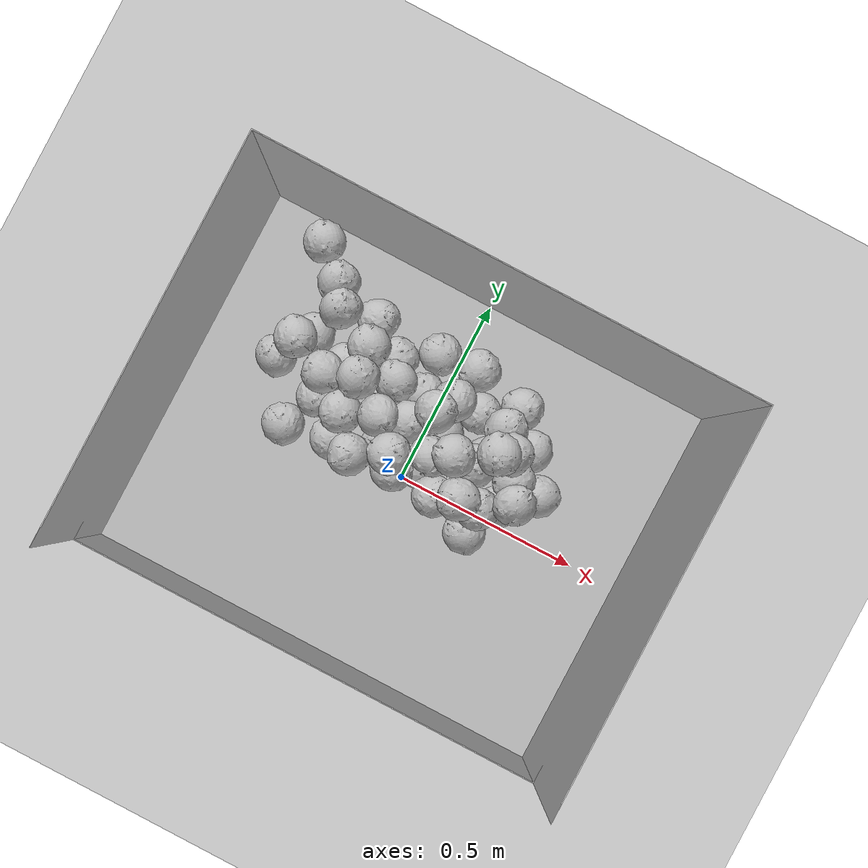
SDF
<sdf version="1.6">
 <world name="default">
  <model name="ground_plane">
   <static>1</static>
   <link name="link">
    <collision name="collision">
     <geometry><plane><normal>0 0 1</normal><size>100 100</size></plane></geometry>
     <surface><friction><ode><mu>100</mu><mu2>50</mu2></ode></friction></surface>
    </collision>
    <visual name="visual">
     <cast_shadows>0</cast_shadows>
     <geometry><plane><normal>0 0 1</normal><size>100 100</size></plane></geometry>
     <material>
      <script><uri>file://media/materials/scripts/gazebo.material</uri><name>Gazebo/Grey</name></script>
     </material>
    </visual>
   </link>
  </model>
  <model name="container">
   <link name="link">
    <inertial>
     <mass>1</mass>
     <inertia><ixx>1</ixx><ixy>0</ixy><ixz>0</ixz><iyy>1</iyy><iyz>0</iyz><izz>1</izz></inertia>
    </inertial>
    <collision name="collision">
     <geometry>
      <mesh>
       <scale>0.001 0.001 0.001</scale>
       <uri>model://big_container_open/big_container_open_meshlab.dae</uri>
      </mesh>
     </geometry>
     <surface>
      <friction><ode><mu>0.6</mu><mu2>0.6</mu2></ode></friction>
      <contact><ode><max_vel>0.1</max_vel><min_depth>0.0001</min_depth></ode></contact>
     </surface>
    </collision>
    <visual name="visual">
     <geometry>
      <mesh>
       <scale>0.001 0.001 0.001</scale>
       <uri>model://big_container_open/big_container_open_meshlab.dae</uri>
      </mesh>
     </geometry>
    </visual>
   </link>
   <pose>4.3e-05 0.001089 -9.3e-05 -2.3e-05 1e-06 -0.000355</pose>
  </model>
  <model name="cabbage_1">
   <link name="link">
    <inertial>
     <mass>1</mass>
     <inertia><ixx>0.001</ixx><ixy>0</ixy><ixz>0</ixz><iyy>0.001</iyy><iyz>0</iyz><izz>0.001</izz></inertia>
    </inertial>
    <collision name="collision">
     <geometry>
      <mesh><scale>0.001 0.001 0.001</scale><uri>model://cabbage/cabbage_single.dae</uri></mesh>
     </geometry>
     <surface>
      <friction><ode><mu>0.8</mu><mu2>0.8</mu2></ode></friction>
      <contact><ode><max_vel>0.1</max_vel><min_depth>0.0001</min_depth></ode></contact>
     </surface>
    </collision>
    <visual name="visual">
     <geometry>
      <mesh><scale>0.001 0.001 0.001</scale><uri>model://cabbage/cabbage_single.dae</uri></mesh>
     </geometry>
     <material><script><uri>model://cabbage/texture.material</uri><name>CabbageTexture</name></script></material>
    </visual>
   </link>
   <pose>0.338045 0.119369 0.00437 1.61918 0.002361 2.62194</pose>
  </model>
  <model name="cabbage_2">
   <link name="link">
    <inertial>
     <mass>1</mass>
     <inertia><ixx>0.001</ixx><ixy>0</ixy><ixz>0</ixz><iyy>0.001</iyy><iyz>0</iyz><izz>0.001</izz></inertia>
    </inertial>
    <collision name="collision">
     <geometry>
      <mesh><scale>0.001 0.001 0.001</scale><uri>model://cabbage/cabbage_single.dae</uri></mesh>
     </geometry>
     <surface>
      <friction><ode><mu>0.8</mu><mu2>0.8</mu2></ode></friction>
      <contact><ode><max_vel>0.1</max_vel><min_depth>0.0001</min_depth></ode></contact>
     </surface>
    </collision>
    <visual name="visual">
     <geometry>
      <mesh><scale>0.001 0.001 0.001</scale><uri>model://cabbage/cabbage_single.dae</uri></mesh>
     </geometry>
     <material><script><uri>model://cabbage/texture.material</uri><name>CabbageTexture</name></script></material>
    </visual>
   </link>
   <pose>-0.160712 0.134637 0.003951 1.57509 0.007918 -1.36634</pose>
  </model>
  <model name="cabbage_6">
   <link name="link">
    <inertial>
     <mass>1</mass>
     <inertia><ixx>0.001</ixx><ixy>0</ixy><ixz>0</ixz><iyy>0.001</iyy><iyz>0</iyz><izz>0.001</izz></inertia>
    </inertial>
    <collision name="collision">
     <geometry>
      <mesh><scale>0.001 0.001 0.001</scale><uri>model://cabbage/cabbage_single.dae</uri></mesh>
     </geometry>
     <surface>
      <friction><ode><mu>0.8</mu><mu2>0.8</mu2></ode></friction>
      <contact><ode><max_vel>0.1</max_vel><min_depth>0.0001</min_depth></ode></contact>
     </surface>
    </collision>
    <visual name="visual">
     <geometry>
      <mesh><scale>0.001 0.001 0.001</scale><uri>model://cabbage/cabbage_single.dae</uri></mesh>
     </geometry>
     <material><script><uri>model://cabbage/texture.material</uri><name>CabbageTexture</name></script></material>
    </visual>
   </link>
   <pose>0.25772 0.047502 0.004075 1.5633 -0.007798 -2.75672</pose>
  </model>
  <model name="cabbage_7">
   <link name="link">
    <inertial>
     <mass>1</mass>
     <inertia><ixx>0.001</ixx><ixy>0</ixy><ixz>0</ixz><iyy>0.001</iyy><iyz>0</iyz><izz>0.001</izz></inertia>
    </inertial>
    <collision name="collision">
     <geometry>
      <mesh><scale>0.001 0.001 0.001</scale><uri>model://cabbage/cabbage_single.dae</uri></mesh>
     </geometry>
     <surface>
      <friction><ode><mu>0.8</mu><mu2>0.8</mu2></ode></friction>
      <contact><ode><max_vel>0.1</max_vel><min_depth>0.0001</min_depth></ode></contact>
     </surface>
    </collision>
    <visual name="visual">
     <geometry>
      <mesh><scale>0.001 0.001 0.001</scale><uri>model://cabbage/cabbage_single.dae</uri></mesh>
     </geometry>
     <material><script><uri>model://cabbage/texture.material</uri><name>CabbageTexture</name></script></material>
    </visual>
   </link>
   <pose>-0.282449 0.083841 0.005995 1.70223 0.073396 -1.94267</pose>
  </model>
  <model name="cabbage_10">
   <link name="link">
    <inertial>
     <mass>1</mass>
     <inertia><ixx>0.001</ixx><ixy>0</ixy><ixz>0</ixz><iyy>0.001</iyy><iyz>0</iyz><izz>0.001</izz></inertia>
    </inertial>
    <collision name="collision">
     <geometry>
      <mesh><scale>0.001 0.001 0.001</scale><uri>model://cabbage/cabbage_single.dae</uri></mesh>
     </geometry>
     <surface>
      <friction><ode><mu>0.8</mu><mu2>0.8</mu2></ode></friction>
      <contact><ode><max_vel>0.1</max_vel><min_depth>0.0001</min_depth></ode></contact>
     </surface>
    </collision>
    <visual name="visual">
     <geometry>
      <mesh><scale>0.001 0.001 0.001</scale><uri>model://cabbage/cabbage_single.dae</uri></mesh>
     </geometry>
     <material><script><uri>model://cabbage/texture.material</uri><name>CabbageTexture</name></script></material>
    </visual>
   </link>
   <pose>0.028906 0.041666 0.004637 1.50783 -0.077096 -1.75712</pose>
  </model>
  <model name="cabbage_11">
   <link name="link">
    <inertial>
     <mass>1</mass>
     <inertia><ixx>0.001</ixx><ixy>0</ixy><ixz>0</ixz><iyy>0.001</iyy><iyz>0</iyz><izz>0.001</izz></inertia>
    </inertial>
    <collision name="collision">
     <geometry>
      <mesh><scale>0.001 0.001 0.001</scale><uri>model://cabbage/cabbage_single.dae</uri></mesh>
     </geometry>
     <surface>
      <friction><ode><mu>0.8</mu><mu2>0.8</mu2></ode></friction>
      <contact><ode><max_vel>0.1</max_vel><min_depth>0.0001</min_depth></ode></contact>
     </surface>
    </collision>
    <visual name="visual">
     <geometry>
      <mesh><scale>0.001 0.001 0.001</scale><uri>model://cabbage/cabbage_single.dae</uri></mesh>
     </geometry>
     <material><script><uri>model://cabbage/texture.material</uri><name>CabbageTexture</name></script></material>
    </visual>
   </link>
   <pose>0.178783 0.14303 0.005735 1.46961 -0.171728 -0.377109</pose>
  </model>
  <model name="cabbage_12">
   <link name="link">
    <inertial>
     <mass>1</mass>
     <inertia><ixx>0.001</ixx><ixy>0</ixy><ixz>0</ixz><iyy>0.001</iyy><iyz>0</iyz><izz>0.001</izz></inertia>
    </inertial>
    <collision name="collision">
     <geometry>
      <mesh><scale>0.001 0.001 0.001</scale><uri>model://cabbage/cabbage_single.dae</uri></mesh>
     </geometry>
     <surface>
      <friction><ode><mu>0.8</mu><mu2>0.8</mu2></ode></friction>
      <contact><ode><max_vel>0.1</max_vel><min_depth>0.0001</min_depth></ode></contact>
     </surface>
    </collision>
    <visual name="visual">
     <geometry>
      <mesh><scale>0.001 0.001 0.001</scale><uri>model://cabbage/cabbage_single.dae</uri></mesh>
     </geometry>
     <material><script><uri>model://cabbage/texture.material</uri><name>CabbageTexture</name></script></material>
    </visual>
   </link>
   <pose>-0.238193 0.32125 0.009271 1.46239 -0.340213 -1.06037</pose>
  </model>
  <model name="cabbage_16">
   <link name="link">
    <inertial>
     <mass>1</mass>
     <inertia><ixx>0.001</ixx><ixy>0</ixy><ixz>0</ixz><iyy>0.001</iyy><iyz>0</iyz><izz>0.001</izz></inertia>
    </inertial>
    <collision name="collision">
     <geometry>
      <mesh><scale>0.001 0.001 0.001</scale><uri>model://cabbage/cabbage_single.dae</uri></mesh>
     </geometry>
     <surface>
      <friction><ode><mu>0.8</mu><mu2>0.8</mu2></ode></friction>
      <contact><ode><max_vel>0.1</max_vel><min_depth>0.0001</min_depth></ode></contact>
     </surface>
    </collision>
    <visual name="visual">
     <geometry>
      <mesh><scale>0.001 0.001 0.001</scale><uri>model://cabbage/cabbage_single.dae</uri></mesh>
     </geometry>
     <material><script><uri>model://cabbage/texture.material</uri><name>CabbageTexture</name></script></material>
    </visual>
   </link>
   <pose>0.198885 0.300354 0.004776 1.49423 -0.095171 -0.896057</pose>
  </model>
  <model name="cabbage_17">
   <link name="link">
    <inertial>
     <mass>1</mass>
     <inertia><ixx>0.001</ixx><ixy>0</ixy><ixz>0</ixz><iyy>0.001</iyy><iyz>0</iyz><izz>0.001</izz></inertia>
    </inertial>
    <collision name="collision">
     <geometry>
      <mesh><scale>0.001 0.001 0.001</scale><uri>model://cabbage/cabbage_single.dae</uri></mesh>
     </geometry>
     <surface>
      <friction><ode><mu>0.8</mu><mu2>0.8</mu2></ode></friction>
      <contact><ode><max_vel>0.1</max_vel><min_depth>0.0001</min_depth></ode></contact>
     </surface>
    </collision>
    <visual name="visual">
     <geometry>
      <mesh><scale>0.001 0.001 0.001</scale><uri>model://cabbage/cabbage_single.dae</uri></mesh>
     </geometry>
     <material><script><uri>model://cabbage/texture.material</uri><name>CabbageTexture</name></script></material>
    </visual>
   </link>
   <pose>-0.206363 0.004883 0.003937 1.57562 0.00821 -1.09915</pose>
  </model>
  <model name="cabbage_20">
   <link name="link">
    <inertial>
     <mass>1</mass>
     <inertia><ixx>0.001</ixx><ixy>0</ixy><ixz>0</ixz><iyy>0.001</iyy><iyz>0</iyz><izz>0.001</izz></inertia>
    </inertial>
    <collision name="collision">
     <geometry>
      <mesh><scale>0.001 0.001 0.001</scale><uri>model://cabbage/cabbage_single.dae</uri></mesh>
     </geometry>
     <surface>
      <friction><ode><mu>0.8</mu><mu2>0.8</mu2></ode></friction>
      <contact><ode><max_vel>0.1</max_vel><min_depth>0.0001</min_depth></ode></contact>
     </surface>
    </collision>
    <visual name="visual">
     <geometry>
      <mesh><scale>0.001 0.001 0.001</scale><uri>model://cabbage/cabbage_single.dae</uri></mesh>
     </geometry>
     <material><script><uri>model://cabbage/texture.material</uri><name>CabbageTexture</name></script></material>
    </visual>
   </link>
   <pose>0.141362 0.032322 0.004782 1.49274 -0.096805 -1.60788</pose>
  </model>
  <model name="cabbage_21">
   <link name="link">
    <inertial>
     <mass>1</mass>
     <inertia><ixx>0.001</ixx><ixy>0</ixy><ixz>0</ixz><iyy>0.001</iyy><iyz>0</iyz><izz>0.001</izz></inertia>
    </inertial>
    <collision name="collision">
     <geometry>
      <mesh><scale>0.001 0.001 0.001</scale><uri>model://cabbage/cabbage_single.dae</uri></mesh>
     </geometry>
     <surface>
      <friction><ode><mu>0.8</mu><mu2>0.8</mu2></ode></friction>
      <contact><ode><max_vel>0.1</max_vel><min_depth>0.0001</min_depth></ode></contact>
     </surface>
    </collision>
    <visual name="visual">
     <geometry>
      <mesh><scale>0.001 0.001 0.001</scale><uri>model://cabbage/cabbage_single.dae</uri></mesh>
     </geometry>
     <material><script><uri>model://cabbage/texture.material</uri><name>CabbageTexture</name></script></material>
    </visual>
   </link>
   <pose>0.265352 0.217555 0.004623 1.50916 -0.07587 -2.79041</pose>
  </model>
  <model name="cabbage_22">
   <link name="link">
    <inertial>
     <mass>1</mass>
     <inertia><ixx>0.001</ixx><ixy>0</ixy><ixz>0</ixz><iyy>0.001</iyy><iyz>0</iyz><izz>0.001</izz></inertia>
    </inertial>
    <collision name="collision">
     <geometry>
      <mesh><scale>0.001 0.001 0.001</scale><uri>model://cabbage/cabbage_single.dae</uri></mesh>
     </geometry>
     <surface>
      <friction><ode><mu>0.8</mu><mu2>0.8</mu2></ode></friction>
      <contact><ode><max_vel>0.1</max_vel><min_depth>0.0001</min_depth></ode></contact>
     </surface>
    </collision>
    <visual name="visual">
     <geometry>
      <mesh><scale>0.001 0.001 0.001</scale><uri>model://cabbage/cabbage_single.dae</uri></mesh>
     </geometry>
     <material><script><uri>model://cabbage/texture.material</uri><name>CabbageTexture</name></script></material>
    </visual>
   </link>
   <pose>-0.046239 0.211124 0.006612 1.37012 0.133765 1.20828</pose>
  </model>
  <model name="cabbage_26">
   <link name="link">
    <inertial>
     <mass>1</mass>
     <inertia><ixx>0.001</ixx><ixy>0</ixy><ixz>0</ixz><iyy>0.001</iyy><iyz>0</iyz><izz>0.001</izz></inertia>
    </inertial>
    <collision name="collision">
     <geometry>
      <mesh><scale>0.001 0.001 0.001</scale><uri>model://cabbage/cabbage_single.dae</uri></mesh>
     </geometry>
     <surface>
      <friction><ode><mu>0.8</mu><mu2>0.8</mu2></ode></friction>
      <contact><ode><max_vel>0.1</max_vel><min_depth>0.0001</min_depth></ode></contact>
     </surface>
    </collision>
    <visual name="visual">
     <geometry>
      <mesh><scale>0.001 0.001 0.001</scale><uri>model://cabbage/cabbage_single.dae</uri></mesh>
     </geometry>
     <material><script><uri>model://cabbage/texture.material</uri><name>CabbageTexture</name></script></material>
    </visual>
   </link>
   <pose>0.103957 0.234161 0.005956 1.4439 -0.20006 -1.04395</pose>
  </model>
  <model name="cabbage_27">
   <link name="link">
    <inertial>
     <mass>1</mass>
     <inertia><ixx>0.001</ixx><ixy>0</ixy><ixz>0</ixz><iyy>0.001</iyy><iyz>0</iyz><izz>0.001</izz></inertia>
    </inertial>
    <collision name="collision">
     <geometry>
      <mesh><scale>0.001 0.001 0.001</scale><uri>model://cabbage/cabbage_single.dae</uri></mesh>
     </geometry>
     <surface>
      <friction><ode><mu>0.8</mu><mu2>0.8</mu2></ode></friction>
      <contact><ode><max_vel>0.1</max_vel><min_depth>0.0001</min_depth></ode></contact>
     </surface>
    </collision>
    <visual name="visual">
     <geometry>
      <mesh><scale>0.001 0.001 0.001</scale><uri>model://cabbage/cabbage_single.dae</uri></mesh>
     </geometry>
     <material><script><uri>model://cabbage/texture.material</uri><name>CabbageTexture</name></script></material>
    </visual>
   </link>
   <pose>-0.336447 -0.021497 0.004791 1.50554 0.032377 1.19338</pose>
  </model>
  <model name="cabbage_28">
   <link name="link">
    <inertial>
     <mass>1</mass>
     <inertia><ixx>0.001</ixx><ixy>0</ixy><ixz>0</ixz><iyy>0.001</iyy><iyz>0</iyz><izz>0.001</izz></inertia>
    </inertial>
    <collision name="collision">
     <geometry>
      <mesh><scale>0.001 0.001 0.001</scale><uri>model://cabbage/cabbage_single.dae</uri></mesh>
     </geometry>
     <surface>
      <friction><ode><mu>0.8</mu><mu2>0.8</mu2></ode></friction>
      <contact><ode><max_vel>0.1</max_vel><min_depth>0.0001</min_depth></ode></contact>
     </surface>
    </collision>
    <visual name="visual">
     <geometry>
      <mesh><scale>0.001 0.001 0.001</scale><uri>model://cabbage/cabbage_single.dae</uri></mesh>
     </geometry>
     <material><script><uri>model://cabbage/texture.material</uri><name>CabbageTexture</name></script></material>
    </visual>
   </link>
   <pose>0.213279 -0.04941 0.004406 1.5299 -0.049896 1.51269</pose>
  </model>
  <model name="cabbage_30">
   <link name="link">
    <inertial>
     <mass>1</mass>
     <inertia><ixx>0.001</ixx><ixy>0</ixy><ixz>0</ixz><iyy>0.001</iyy><iyz>0</iyz><izz>0.001</izz></inertia>
    </inertial>
    <collision name="collision">
     <geometry>
      <mesh><scale>0.001 0.001 0.001</scale><uri>model://cabbage/cabbage_single.dae</uri></mesh>
     </geometry>
     <surface>
      <friction><ode><mu>0.8</mu><mu2>0.8</mu2></ode></friction>
      <contact><ode><max_vel>0.1</max_vel><min_depth>0.0001</min_depth></ode></contact>
     </surface>
    </collision>
    <visual name="visual">
     <geometry>
      <mesh><scale>0.001 0.001 0.001</scale><uri>model://cabbage/cabbage_single.dae</uri></mesh>
     </geometry>
     <material><script><uri>model://cabbage/texture.material</uri><name>CabbageTexture</name></script></material>
    </visual>
   </link>
   <pose>0.033468 0.131767 0.014044 2.02488 0.188294 2.44404</pose>
  </model>
  <model name="cabbage_31">
   <link name="link">
    <inertial>
     <mass>1</mass>
     <inertia><ixx>0.001</ixx><ixy>0</ixy><ixz>0</ixz><iyy>0.001</iyy><iyz>0</iyz><izz>0.001</izz></inertia>
    </inertial>
    <collision name="collision">
     <geometry>
      <mesh><scale>0.001 0.001 0.001</scale><uri>model://cabbage/cabbage_single.dae</uri></mesh>
     </geometry>
     <surface>
      <friction><ode><mu>0.8</mu><mu2>0.8</mu2></ode></friction>
      <contact><ode><max_vel>0.1</max_vel><min_depth>0.0001</min_depth></ode></contact>
     </surface>
    </collision>
    <visual name="visual">
     <geometry>
      <mesh><scale>0.001 0.001 0.001</scale><uri>model://cabbage/cabbage_single.dae</uri></mesh>
     </geometry>
     <material><script><uri>model://cabbage/texture.material</uri><name>CabbageTexture</name></script></material>
    </visual>
   </link>
   <pose>0.26403 0.126406 0.067112 1.43911 -0.097355 0.175454</pose>
  </model>
  <model name="cabbage_32">
   <link name="link">
    <inertial>
     <mass>1</mass>
     <inertia><ixx>0.001</ixx><ixy>0</ixy><ixz>0</ixz><iyy>0.001</iyy><iyz>0</iyz><izz>0.001</izz></inertia>
    </inertial>
    <collision name="collision">
     <geometry>
      <mesh><scale>0.001 0.001 0.001</scale><uri>model://cabbage/cabbage_single.dae</uri></mesh>
     </geometry>
     <surface>
      <friction><ode><mu>0.8</mu><mu2>0.8</mu2></ode></friction>
      <contact><ode><max_vel>0.1</max_vel><min_depth>0.0001</min_depth></ode></contact>
     </surface>
    </collision>
    <visual name="visual">
     <geometry>
      <mesh><scale>0.001 0.001 0.001</scale><uri>model://cabbage/cabbage_single.dae</uri></mesh>
     </geometry>
     <material><script><uri>model://cabbage/texture.material</uri><name>CabbageTexture</name></script></material>
    </visual>
   </link>
   <pose>-0.376612 0.220758 0.004318 1.53156 -0.047835 -2.41315</pose>
  </model>
  <model name="cabbage_35">
   <link name="link">
    <inertial>
     <mass>1</mass>
     <inertia><ixx>0.001</ixx><ixy>0</ixy><ixz>0</ixz><iyy>0.001</iyy><iyz>0</iyz><izz>0.001</izz></inertia>
    </inertial>
    <collision name="collision">
     <geometry>
      <mesh><scale>0.001 0.001 0.001</scale><uri>model://cabbage/cabbage_single.dae</uri></mesh>
     </geometry>
     <surface>
      <friction><ode><mu>0.8</mu><mu2>0.8</mu2></ode></friction>
      <contact><ode><max_vel>0.1</max_vel><min_depth>0.0001</min_depth></ode></contact>
     </surface>
    </collision>
    <visual name="visual">
     <geometry>
      <mesh><scale>0.001 0.001 0.001</scale><uri>model://cabbage/cabbage_single.dae</uri></mesh>
     </geometry>
     <material><script><uri>model://cabbage/texture.material</uri><name>CabbageTexture</name></script></material>
    </visual>
   </link>
   <pose>0.11408 -0.007497 0.08358 1.91992 -0.289045 -1.10072</pose>
  </model>
  <model name="cabbage_36">
   <link name="link">
    <inertial>
     <mass>1</mass>
     <inertia><ixx>0.001</ixx><ixy>0</ixy><ixz>0</ixz><iyy>0.001</iyy><iyz>0</iyz><izz>0.001</izz></inertia>
    </inertial>
    <collision name="collision">
     <geometry>
      <mesh><scale>0.001 0.001 0.001</scale><uri>model://cabbage/cabbage_single.dae</uri></mesh>
     </geometry>
     <surface>
      <friction><ode><mu>0.8</mu><mu2>0.8</mu2></ode></friction>
      <contact><ode><max_vel>0.1</max_vel><min_depth>0.0001</min_depth></ode></contact>
     </surface>
    </collision>
    <visual name="visual">
     <geometry>
      <mesh><scale>0.001 0.001 0.001</scale><uri>model://cabbage/cabbage_single.dae</uri></mesh>
     </geometry>
     <material><script><uri>model://cabbage/texture.material</uri><name>CabbageTexture</name></script></material>
    </visual>
   </link>
   <pose>0.178663 0.255461 0.076212 1.98723 0.223029 -0.199707</pose>
  </model>
  <model name="cabbage_37">
   <link name="link">
    <inertial>
     <mass>1</mass>
     <inertia><ixx>0.001</ixx><ixy>0</ixy><ixz>0</ixz><iyy>0.001</iyy><iyz>0</iyz><izz>0.001</izz></inertia>
    </inertial>
    <collision name="collision">
     <geometry>
      <mesh><scale>0.001 0.001 0.001</scale><uri>model://cabbage/cabbage_single.dae</uri></mesh>
     </geometry>
     <surface>
      <friction><ode><mu>0.8</mu><mu2>0.8</mu2></ode></friction>
      <contact><ode><max_vel>0.1</max_vel><min_depth>0.0001</min_depth></ode></contact>
     </surface>
    </collision>
    <visual name="visual">
     <geometry>
      <mesh><scale>0.001 0.001 0.001</scale><uri>model://cabbage/cabbage_single.dae</uri></mesh>
     </geometry>
     <material><script><uri>model://cabbage/texture.material</uri><name>CabbageTexture</name></script></material>
    </visual>
   </link>
   <pose>-0.423853 0.14604 0.012931 1.47782 -0.495156 1.10701</pose>
  </model>
  <model name="cabbage_40">
   <link name="link">
    <inertial>
     <mass>1</mass>
     <inertia><ixx>0.001</ixx><ixy>0</ixy><ixz>0</ixz><iyy>0.001</iyy><iyz>0</iyz><izz>0.001</izz></inertia>
    </inertial>
    <collision name="collision">
     <geometry>
      <mesh><scale>0.001 0.001 0.001</scale><uri>model://cabbage/cabbage_single.dae</uri></mesh>
     </geometry>
     <surface>
      <friction><ode><mu>0.8</mu><mu2>0.8</mu2></ode></friction>
      <contact><ode><max_vel>0.1</max_vel><min_depth>0.0001</min_depth></ode></contact>
     </surface>
    </collision>
    <visual name="visual">
     <geometry>
      <mesh><scale>0.001 0.001 0.001</scale><uri>model://cabbage/cabbage_single.dae</uri></mesh>
     </geometry>
     <material><script><uri>model://cabbage/texture.material</uri><name>CabbageTexture</name></script></material>
    </visual>
   </link>
   <pose>-0.085167 0.05034 0.003951 1.57538 0.009382 1.75053</pose>
  </model>
  <model name="cabbage_41">
   <link name="link">
    <inertial>
     <mass>1</mass>
     <inertia><ixx>0.001</ixx><ixy>0</ixy><ixz>0</ixz><iyy>0.001</iyy><iyz>0</iyz><izz>0.001</izz></inertia>
    </inertial>
    <collision name="collision">
     <geometry>
      <mesh><scale>0.001 0.001 0.001</scale><uri>model://cabbage/cabbage_single.dae</uri></mesh>
     </geometry>
     <surface>
      <friction><ode><mu>0.8</mu><mu2>0.8</mu2></ode></friction>
      <contact><ode><max_vel>0.1</max_vel><min_depth>0.0001</min_depth></ode></contact>
     </surface>
    </collision>
    <visual name="visual">
     <geometry>
      <mesh><scale>0.001 0.001 0.001</scale><uri>model://cabbage/cabbage_single.dae</uri></mesh>
     </geometry>
     <material><script><uri>model://cabbage/texture.material</uri><name>CabbageTexture</name></script></material>
    </visual>
   </link>
   <pose>0.219704 0.025738 0.081941 1.76958 -0.164206 -0.279248</pose>
  </model>
  <model name="cabbage_42">
   <link name="link">
    <inertial>
     <mass>1</mass>
     <inertia><ixx>0.001</ixx><ixy>0</ixy><ixz>0</ixz><iyy>0.001</iyy><iyz>0</iyz><izz>0.001</izz></inertia>
    </inertial>
    <collision name="collision">
     <geometry>
      <mesh><scale>0.001 0.001 0.001</scale><uri>model://cabbage/cabbage_single.dae</uri></mesh>
     </geometry>
     <surface>
      <friction><ode><mu>0.8</mu><mu2>0.8</mu2></ode></friction>
      <contact><ode><max_vel>0.1</max_vel><min_depth>0.0001</min_depth></ode></contact>
     </surface>
    </collision>
    <visual name="visual">
     <geometry>
      <mesh><scale>0.001 0.001 0.001</scale><uri>model://cabbage/cabbage_single.dae</uri></mesh>
     </geometry>
     <material><script><uri>model://cabbage/texture.material</uri><name>CabbageTexture</name></script></material>
    </visual>
   </link>
   <pose>-0.221262 0.067492 0.074463 1.46171 -0.194613 -1.89476</pose>
  </model>
  <model name="cabbage_45">
   <link name="link">
    <inertial>
     <mass>1</mass>
     <inertia><ixx>0.001</ixx><ixy>0</ixy><ixz>0</ixz><iyy>0.001</iyy><iyz>0</iyz><izz>0.001</izz></inertia>
    </inertial>
    <collision name="collision">
     <geometry>
      <mesh><scale>0.001 0.001 0.001</scale><uri>model://cabbage/cabbage_single.dae</uri></mesh>
     </geometry>
     <surface>
      <friction><ode><mu>0.8</mu><mu2>0.8</mu2></ode></friction>
      <contact><ode><max_vel>0.1</max_vel><min_depth>0.0001</min_depth></ode></contact>
     </surface>
    </collision>
    <visual name="visual">
     <geometry>
      <mesh><scale>0.001 0.001 0.001</scale><uri>model://cabbage/cabbage_single.dae</uri></mesh>
     </geometry>
     <material><script><uri>model://cabbage/texture.material</uri><name>CabbageTexture</name></script></material>
    </visual>
   </link>
   <pose>-0.159347 -0.017573 0.079361 1.84133 -0.166215 2.46798</pose>
  </model>
  <model name="cabbage_46">
   <link name="link">
    <inertial>
     <mass>1</mass>
     <inertia><ixx>0.001</ixx><ixy>0</ixy><ixz>0</ixz><iyy>0.001</iyy><iyz>0</iyz><izz>0.001</izz></inertia>
    </inertial>
    <collision name="collision">
     <geometry>
      <mesh><scale>0.001 0.001 0.001</scale><uri>model://cabbage/cabbage_single.dae</uri></mesh>
     </geometry>
     <surface>
      <friction><ode><mu>0.8</mu><mu2>0.8</mu2></ode></friction>
      <contact><ode><max_vel>0.1</max_vel><min_depth>0.0001</min_depth></ode></contact>
     </surface>
    </collision>
    <visual name="visual">
     <geometry>
      <mesh><scale>0.001 0.001 0.001</scale><uri>model://cabbage/cabbage_single.dae</uri></mesh>
     </geometry>
     <material><script><uri>model://cabbage/texture.material</uri><name>CabbageTexture</name></script></material>
    </visual>
   </link>
   <pose>0.273119 0.092342 0.144289 0.878448 0.12017 -2.38893</pose>
  </model>
  <model name="cabbage_47">
   <link name="link">
    <inertial>
     <mass>1</mass>
     <inertia><ixx>0.001</ixx><ixy>0</ixy><ixz>0</ixz><iyy>0.001</iyy><iyz>0</iyz><izz>0.001</izz></inertia>
    </inertial>
    <collision name="collision">
     <geometry>
      <mesh><scale>0.001 0.001 0.001</scale><uri>model://cabbage/cabbage_single.dae</uri></mesh>
     </geometry>
     <surface>
      <friction><ode><mu>0.8</mu><mu2>0.8</mu2></ode></friction>
      <contact><ode><max_vel>0.1</max_vel><min_depth>0.0001</min_depth></ode></contact>
     </surface>
    </collision>
    <visual name="visual">
     <geometry>
      <mesh><scale>0.001 0.001 0.001</scale><uri>model://cabbage/cabbage_single.dae</uri></mesh>
     </geometry>
     <material><script><uri>model://cabbage/texture.material</uri><name>CabbageTexture</name></script></material>
    </visual>
   </link>
   <pose>-0.261861 0.184566 0.00605 1.39357 -0.165763 -0.285533</pose>
  </model>
  <model name="cabbage_50">
   <link name="link">
    <inertial>
     <mass>1</mass>
     <inertia><ixx>0.001</ixx><ixy>0</ixy><ixz>0</ixz><iyy>0.001</iyy><iyz>0</iyz><izz>0.001</izz></inertia>
    </inertial>
    <collision name="collision">
     <geometry>
      <mesh><scale>0.001 0.001 0.001</scale><uri>model://cabbage/cabbage_single.dae</uri></mesh>
     </geometry>
     <surface>
      <friction><ode><mu>0.8</mu><mu2>0.8</mu2></ode></friction>
      <contact><ode><max_vel>0.1</max_vel><min_depth>0.0001</min_depth></ode></contact>
     </surface>
    </collision>
    <visual name="visual">
     <geometry>
      <mesh><scale>0.001 0.001 0.001</scale><uri>model://cabbage/cabbage_single.dae</uri></mesh>
     </geometry>
     <material><script><uri>model://cabbage/texture.material</uri><name>CabbageTexture</name></script></material>
    </visual>
   </link>
   <pose>-0.047929 0.143873 0.064783 1.71151 0.15239 -0.759553</pose>
  </model>
  <model name="cabbage_51">
   <link name="link">
    <inertial>
     <mass>1</mass>
     <inertia><ixx>0.001</ixx><ixy>0</ixy><ixz>0</ixz><iyy>0.001</iyy><iyz>0</iyz><izz>0.001</izz></inertia>
    </inertial>
    <collision name="collision">
     <geometry>
      <mesh><scale>0.001 0.001 0.001</scale><uri>model://cabbage/cabbage_single.dae</uri></mesh>
     </geometry>
     <surface>
      <friction><ode><mu>0.8</mu><mu2>0.8</mu2></ode></friction>
      <contact><ode><max_vel>0.1</max_vel><min_depth>0.0001</min_depth></ode></contact>
     </surface>
    </collision>
    <visual name="visual">
     <geometry>
      <mesh><scale>0.001 0.001 0.001</scale><uri>model://cabbage/cabbage_single.dae</uri></mesh>
     </geometry>
     <material><script><uri>model://cabbage/texture.material</uri><name>CabbageTexture</name></script></material>
    </visual>
   </link>
   <pose>0.162947 0.128603 0.091604 1.94238 -0.02724 -0.52338</pose>
  </model>
  <model name="cabbage_52">
   <link name="link">
    <inertial>
     <mass>1</mass>
     <inertia><ixx>0.001</ixx><ixy>0</ixy><ixz>0</ixz><iyy>0.001</iyy><iyz>0</iyz><izz>0.001</izz></inertia>
    </inertial>
    <collision name="collision">
     <geometry>
      <mesh><scale>0.001 0.001 0.001</scale><uri>model://cabbage/cabbage_single.dae</uri></mesh>
     </geometry>
     <surface>
      <friction><ode><mu>0.8</mu><mu2>0.8</mu2></ode></friction>
      <contact><ode><max_vel>0.1</max_vel><min_depth>0.0001</min_depth></ode></contact>
     </surface>
    </collision>
    <visual name="visual">
     <geometry>
      <mesh><scale>0.001 0.001 0.001</scale><uri>model://cabbage/cabbage_single.dae</uri></mesh>
     </geometry>
     <material><script><uri>model://cabbage/texture.material</uri><name>CabbageTexture</name></script></material>
    </visual>
   </link>
   <pose>-0.144381 0.267464 0.005484 1.44814 -0.16663 0.176334</pose>
  </model>
  <model name="cabbage_56">
   <link name="link">
    <inertial>
     <mass>1</mass>
     <inertia><ixx>0.001</ixx><ixy>0</ixy><ixz>0</ixz><iyy>0.001</iyy><iyz>0</iyz><izz>0.001</izz></inertia>
    </inertial>
    <collision name="collision">
     <geometry>
      <mesh><scale>0.001 0.001 0.001</scale><uri>model://cabbage/cabbage_single.dae</uri></mesh>
     </geometry>
     <surface>
      <friction><ode><mu>0.8</mu><mu2>0.8</mu2></ode></friction>
      <contact><ode><max_vel>0.1</max_vel><min_depth>0.0001</min_depth></ode></contact>
     </surface>
    </collision>
    <visual name="visual">
     <geometry>
      <mesh><scale>0.001 0.001 0.001</scale><uri>model://cabbage/cabbage_single.dae</uri></mesh>
     </geometry>
     <material><script><uri>model://cabbage/texture.material</uri><name>CabbageTexture</name></script></material>
    </visual>
   </link>
   <pose>0.226906 0.190443 0.144285 1.75442 0.138648 -1.09665</pose>
  </model>
  <model name="cabbage_57">
   <link name="link">
    <inertial>
     <mass>1</mass>
     <inertia><ixx>0.001</ixx><ixy>0</ixy><ixz>0</ixz><iyy>0.001</iyy><iyz>0</iyz><izz>0.001</izz></inertia>
    </inertial>
    <collision name="collision">
     <geometry>
      <mesh><scale>0.001 0.001 0.001</scale><uri>model://cabbage/cabbage_single.dae</uri></mesh>
     </geometry>
     <surface>
      <friction><ode><mu>0.8</mu><mu2>0.8</mu2></ode></friction>
      <contact><ode><max_vel>0.1</max_vel><min_depth>0.0001</min_depth></ode></contact>
     </surface>
    </collision>
    <visual name="visual">
     <geometry>
      <mesh><scale>0.001 0.001 0.001</scale><uri>model://cabbage/cabbage_single.dae</uri></mesh>
     </geometry>
     <material><script><uri>model://cabbage/texture.material</uri><name>CabbageTexture</name></script></material>
    </visual>
   </link>
   <pose>-0.235375 0.264585 0.073959 1.36881 0.114942 -1.73792</pose>
  </model>
  <model name="cabbage_60">
   <link name="link">
    <inertial>
     <mass>1</mass>
     <inertia><ixx>0.001</ixx><ixy>0</ixy><ixz>0</ixz><iyy>0.001</iyy><iyz>0</iyz><izz>0.001</izz></inertia>
    </inertial>
    <collision name="collision">
     <geometry>
      <mesh><scale>0.001 0.001 0.001</scale><uri>model://cabbage/cabbage_single.dae</uri></mesh>
     </geometry>
     <surface>
      <friction><ode><mu>0.8</mu><mu2>0.8</mu2></ode></friction>
      <contact><ode><max_vel>0.1</max_vel><min_depth>0.0001</min_depth></ode></contact>
     </surface>
    </collision>
    <visual name="visual">
     <geometry>
      <mesh><scale>0.001 0.001 0.001</scale><uri>model://cabbage/cabbage_single.dae</uri></mesh>
     </geometry>
     <material><script><uri>model://cabbage/texture.material</uri><name>CabbageTexture</name></script></material>
    </visual>
   </link>
   <pose>-0.023558 0.006762 0.076317 1.62639 -0.097627 -0.563126</pose>
  </model>
  <model name="cabbage_62">
   <link name="link">
    <inertial>
     <mass>1</mass>
     <inertia><ixx>0.001</ixx><ixy>0</ixy><ixz>0</ixz><iyy>0.001</iyy><iyz>0</iyz><izz>0.001</izz></inertia>
    </inertial>
    <collision name="collision">
     <geometry>
      <mesh><scale>0.001 0.001 0.001</scale><uri>model://cabbage/cabbage_single.dae</uri></mesh>
     </geometry>
     <surface>
      <friction><ode><mu>0.8</mu><mu2>0.8</mu2></ode></friction>
      <contact><ode><max_vel>0.1</max_vel><min_depth>0.0001</min_depth></ode></contact>
     </surface>
    </collision>
    <visual name="visual">
     <geometry>
      <mesh><scale>0.001 0.001 0.001</scale><uri>model://cabbage/cabbage_single.dae</uri></mesh>
     </geometry>
     <material><script><uri>model://cabbage/texture.material</uri><name>CabbageTexture</name></script></material>
    </visual>
   </link>
   <pose>-0.400712 0.192158 0.086747 1.64906 0.078541 -1.80267</pose>
  </model>
  <model name="cabbage_67">
   <link name="link">
    <inertial>
     <mass>1</mass>
     <inertia><ixx>0.001</ixx><ixy>0</ixy><ixz>0</ixz><iyy>0.001</iyy><iyz>0</iyz><izz>0.001</izz></inertia>
    </inertial>
    <collision name="collision">
     <geometry>
      <mesh><scale>0.001 0.001 0.001</scale><uri>model://cabbage/cabbage_single.dae</uri></mesh>
     </geometry>
     <surface>
      <friction><ode><mu>0.8</mu><mu2>0.8</mu2></ode></friction>
      <contact><ode><max_vel>0.1</max_vel><min_depth>0.0001</min_depth></ode></contact>
     </surface>
    </collision>
    <visual name="visual">
     <geometry>
      <mesh><scale>0.001 0.001 0.001</scale><uri>model://cabbage/cabbage_single.dae</uri></mesh>
     </geometry>
     <material><script><uri>model://cabbage/texture.material</uri><name>CabbageTexture</name></script></material>
    </visual>
   </link>
   <pose>-0.288625 0.146562 0.084742 1.18933 0.139146 2.10521</pose>
  </model>
  <model name="cabbage_71">
   <link name="link">
    <inertial>
     <mass>1</mass>
     <inertia><ixx>0.001</ixx><ixy>0</ixy><ixz>0</ixz><iyy>0.001</iyy><iyz>0</iyz><izz>0.001</izz></inertia>
    </inertial>
    <collision name="collision">
     <geometry>
      <mesh><scale>0.001 0.001 0.001</scale><uri>model://cabbage/cabbage_single.dae</uri></mesh>
     </geometry>
     <surface>
      <friction><ode><mu>0.8</mu><mu2>0.8</mu2></ode></friction>
      <contact><ode><max_vel>0.1</max_vel><min_depth>0.0001</min_depth></ode></contact>
     </surface>
    </collision>
    <visual name="visual">
     <geometry>
      <mesh><scale>0.001 0.001 0.001</scale><uri>model://cabbage/cabbage_single.dae</uri></mesh>
     </geometry>
     <material><script><uri>model://cabbage/texture.material</uri><name>CabbageTexture</name></script></material>
    </visual>
   </link>
   <pose>0.155569 0.013466 0.157662 1.57787 0.09568 2.56519</pose>
  </model>
  <model name="cabbage_72">
   <link name="link">
    <inertial>
     <mass>1</mass>
     <inertia><ixx>0.001</ixx><ixy>0</ixy><ixz>0</ixz><iyy>0.001</iyy><iyz>0</iyz><izz>0.001</izz></inertia>
    </inertial>
    <collision name="collision">
     <geometry>
      <mesh><scale>0.001 0.001 0.001</scale><uri>model://cabbage/cabbage_single.dae</uri></mesh>
     </geometry>
     <surface>
      <friction><ode><mu>0.8</mu><mu2>0.8</mu2></ode></friction>
      <contact><ode><max_vel>0.1</max_vel><min_depth>0.0001</min_depth></ode></contact>
     </surface>
    </collision>
    <visual name="visual">
     <geometry>
      <mesh><scale>0.001 0.001 0.001</scale><uri>model://cabbage/cabbage_single.dae</uri></mesh>
     </geometry>
     <material><script><uri>model://cabbage/texture.material</uri><name>CabbageTexture</name></script></material>
    </visual>
   </link>
   <pose>-0.060585 0.317315 0.008819 1.52502 0.324007 1.39531</pose>
  </model>
  <model name="cabbage_75">
   <link name="link">
    <inertial>
     <mass>1</mass>
     <inertia><ixx>0.001</ixx><ixy>0</ixy><ixz>0</ixz><iyy>0.001</iyy><iyz>0</iyz><izz>0.001</izz></inertia>
    </inertial>
    <collision name="collision">
     <geometry>
      <mesh><scale>0.001 0.001 0.001</scale><uri>model://cabbage/cabbage_single.dae</uri></mesh>
     </geometry>
     <surface>
      <friction><ode><mu>0.8</mu><mu2>0.8</mu2></ode></friction>
      <contact><ode><max_vel>0.1</max_vel><min_depth>0.0001</min_depth></ode></contact>
     </surface>
    </collision>
    <visual name="visual">
     <geometry>
      <mesh><scale>0.001 0.001 0.001</scale><uri>model://cabbage/cabbage_single.dae</uri></mesh>
     </geometry>
     <material><script><uri>model://cabbage/texture.material</uri><name>CabbageTexture</name></script></material>
    </visual>
   </link>
   <pose>0.036436 0.053536 0.108285 1.50896 0.784114 1.34144</pose>
  </model>
  <model name="cabbage_76">
   <link name="link">
    <inertial>
     <mass>1</mass>
     <inertia><ixx>0.001</ixx><ixy>0</ixy><ixz>0</ixz><iyy>0.001</iyy><iyz>0</iyz><izz>0.001</izz></inertia>
    </inertial>
    <collision name="collision">
     <geometry>
      <mesh><scale>0.001 0.001 0.001</scale><uri>model://cabbage/cabbage_single.dae</uri></mesh>
     </geometry>
     <surface>
      <friction><ode><mu>0.8</mu><mu2>0.8</mu2></ode></friction>
      <contact><ode><max_vel>0.1</max_vel><min_depth>0.0001</min_depth></ode></contact>
     </surface>
    </collision>
    <visual name="visual">
     <geometry>
      <mesh><scale>0.001 0.001 0.001</scale><uri>model://cabbage/cabbage_single.dae</uri></mesh>
     </geometry>
     <material><script><uri>model://cabbage/texture.material</uri><name>CabbageTexture</name></script></material>
    </visual>
   </link>
   <pose>0.041168 0.339353 0.007378 1.51972 0.262088 0.079439</pose>
  </model>
  <model name="cabbage_77">
   <link name="link">
    <inertial>
     <mass>1</mass>
     <inertia><ixx>0.001</ixx><ixy>0</ixy><ixz>0</ixz><iyy>0.001</iyy><iyz>0</iyz><izz>0.001</izz></inertia>
    </inertial>
    <collision name="collision">
     <geometry>
      <mesh><scale>0.001 0.001 0.001</scale><uri>model://cabbage/cabbage_single.dae</uri></mesh>
     </geometry>
     <surface>
      <friction><ode><mu>0.8</mu><mu2>0.8</mu2></ode></friction>
      <contact><ode><max_vel>0.1</max_vel><min_depth>0.0001</min_depth></ode></contact>
     </surface>
    </collision>
    <visual name="visual">
     <geometry>
      <mesh><scale>0.001 0.001 0.001</scale><uri>model://cabbage/cabbage_single.dae</uri></mesh>
     </geometry>
     <material><script><uri>model://cabbage/texture.material</uri><name>CabbageTexture</name></script></material>
    </visual>
   </link>
   <pose>-0.12655 0.231862 0.081533 1.56257 0.517151 -1.53419</pose>
  </model>
  <model name="cabbage_80">
   <link name="link">
    <inertial>
     <mass>1</mass>
     <inertia><ixx>0.001</ixx><ixy>0</ixy><ixz>0</ixz><iyy>0.001</iyy><iyz>0</iyz><izz>0.001</izz></inertia>
    </inertial>
    <collision name="collision">
     <geometry>
      <mesh><scale>0.001 0.001 0.001</scale><uri>model://cabbage/cabbage_single.dae</uri></mesh>
     </geometry>
     <surface>
      <friction><ode><mu>0.8</mu><mu2>0.8</mu2></ode></friction>
      <contact><ode><max_vel>0.1</max_vel><min_depth>0.0001</min_depth></ode></contact>
     </surface>
    </collision>
    <visual name="visual">
     <geometry>
      <mesh><scale>0.001 0.001 0.001</scale><uri>model://cabbage/cabbage_single.dae</uri></mesh>
     </geometry>
     <material><script><uri>model://cabbage/texture.material</uri><name>CabbageTexture</name></script></material>
    </visual>
   </link>
   <pose>-0.096441 0.116813 0.128223 0.843371 0.284394 2.10078</pose>
  </model>
  <model name="cabbage_81">
   <link name="link">
    <inertial>
     <mass>1</mass>
     <inertia><ixx>0.001</ixx><ixy>0</ixy><ixz>0</ixz><iyy>0.001</iyy><iyz>0</iyz><izz>0.001</izz></inertia>
    </inertial>
    <collision name="collision">
     <geometry>
      <mesh><scale>0.001 0.001 0.001</scale><uri>model://cabbage/cabbage_single.dae</uri></mesh>
     </geometry>
     <surface>
      <friction><ode><mu>0.8</mu><mu2>0.8</mu2></ode></friction>
      <contact><ode><max_vel>0.1</max_vel><min_depth>0.0001</min_depth></ode></contact>
     </surface>
    </collision>
    <visual name="visual">
     <geometry>
      <mesh><scale>0.001 0.001 0.001</scale><uri>model://cabbage/cabbage_single.dae</uri></mesh>
     </geometry>
     <material><script><uri>model://cabbage/texture.material</uri><name>CabbageTexture</name></script></material>
    </visual>
   </link>
   <pose>0.039936 0.236778 0.072722 1.3054 -0.012797 1.24673</pose>
  </model>
  <model name="cabbage_82">
   <link name="link">
    <inertial>
     <mass>1</mass>
     <inertia><ixx>0.001</ixx><ixy>0</ixy><ixz>0</ixz><iyy>0.001</iyy><iyz>0</iyz><izz>0.001</izz></inertia>
    </inertial>
    <collision name="collision">
     <geometry>
      <mesh><scale>0.001 0.001 0.001</scale><uri>model://cabbage/cabbage_single.dae</uri></mesh>
     </geometry>
     <surface>
      <friction><ode><mu>0.8</mu><mu2>0.8</mu2></ode></friction>
      <contact><ode><max_vel>0.1</max_vel><min_depth>0.0001</min_depth></ode></contact>
     </surface>
    </collision>
    <visual name="visual">
     <geometry>
      <mesh><scale>0.001 0.001 0.001</scale><uri>model://cabbage/cabbage_single.dae</uri></mesh>
     </geometry>
     <material><script><uri>model://cabbage/texture.material</uri><name>CabbageTexture</name></script></material>
    </visual>
   </link>
   <pose>-0.232129 0.177149 0.132702 1.87267 0.281355 0.672592</pose>
  </model>
  <model name="cabbage_85">
   <link name="link">
    <inertial>
     <mass>1</mass>
     <inertia><ixx>0.001</ixx><ixy>0</ixy><ixz>0</ixz><iyy>0.001</iyy><iyz>0</iyz><izz>0.001</izz></inertia>
    </inertial>
    <collision name="collision">
     <geometry>
      <mesh><scale>0.001 0.001 0.001</scale><uri>model://cabbage/cabbage_single.dae</uri></mesh>
     </geometry>
     <surface>
      <friction><ode><mu>0.8</mu><mu2>0.8</mu2></ode></friction>
      <contact><ode><max_vel>0.1</max_vel><min_depth>0.0001</min_depth></ode></contact>
     </surface>
    </collision>
    <visual name="visual">
     <geometry>
      <mesh><scale>0.001 0.001 0.001</scale><uri>model://cabbage/cabbage_single.dae</uri></mesh>
     </geometry>
     <material><script><uri>model://cabbage/texture.material</uri><name>CabbageTexture</name></script></material>
    </visual>
   </link>
   <pose>-0.048255 0.031117 0.160071 1.46969 -0.188121 -0.562896</pose>
  </model>
  <model name="cabbage_86">
   <link name="link">
    <inertial>
     <mass>1</mass>
     <inertia><ixx>0.001</ixx><ixy>0</ixy><ixz>0</ixz><iyy>0.001</iyy><iyz>0</iyz><izz>0.001</izz></inertia>
    </inertial>
    <collision name="collision">
     <geometry>
      <mesh><scale>0.001 0.001 0.001</scale><uri>model://cabbage/cabbage_single.dae</uri></mesh>
     </geometry>
     <surface>
      <friction><ode><mu>0.8</mu><mu2>0.8</mu2></ode></friction>
      <contact><ode><max_vel>0.1</max_vel><min_depth>0.0001</min_depth></ode></contact>
     </surface>
    </collision>
    <visual name="visual">
     <geometry>
      <mesh><scale>0.001 0.001 0.001</scale><uri>model://cabbage/cabbage_single.dae</uri></mesh>
     </geometry>
     <material><script><uri>model://cabbage/texture.material</uri><name>CabbageTexture</name></script></material>
    </visual>
   </link>
   <pose>0.017394 0.202589 0.148862 1.12406 0.383575 3.02162</pose>
  </model>
  <model name="cabbage_87">
   <link name="link">
    <inertial>
     <mass>1</mass>
     <inertia><ixx>0.001</ixx><ixy>0</ixy><ixz>0</ixz><iyy>0.001</iyy><iyz>0</iyz><izz>0.001</izz></inertia>
    </inertial>
    <collision name="collision">
     <geometry>
      <mesh><scale>0.001 0.001 0.001</scale><uri>model://cabbage/cabbage_single.dae</uri></mesh>
     </geometry>
     <surface>
      <friction><ode><mu>0.8</mu><mu2>0.8</mu2></ode></friction>
      <contact><ode><max_vel>0.1</max_vel><min_depth>0.0001</min_depth></ode></contact>
     </surface>
    </collision>
    <visual name="visual">
     <geometry>
      <mesh><scale>0.001 0.001 0.001</scale><uri>model://cabbage/cabbage_single.dae</uri></mesh>
     </geometry>
     <material><script><uri>model://cabbage/texture.material</uri><name>CabbageTexture</name></script></material>
    </visual>
   </link>
   <pose>-0.461678 0.459739 0.007774 1.50082 0.276019 -1.71718</pose>
  </model>
  <model name="cabbage_91">
   <link name="link">
    <inertial>
     <mass>1</mass>
     <inertia><ixx>0.001</ixx><ixy>0</ixy><ixz>0</ixz><iyy>0.001</iyy><iyz>0</iyz><izz>0.001</izz></inertia>
    </inertial>
    <collision name="collision">
     <geometry>
      <mesh><scale>0.001 0.001 0.001</scale><uri>model://cabbage/cabbage_single.dae</uri></mesh>
     </geometry>
     <surface>
      <friction><ode><mu>0.8</mu><mu2>0.8</mu2></ode></friction>
      <contact><ode><max_vel>0.1</max_vel><min_depth>0.0001</min_depth></ode></contact>
     </surface>
    </collision>
    <visual name="visual">
     <geometry>
      <mesh><scale>0.001 0.001 0.001</scale><uri>model://cabbage/cabbage_single.dae</uri></mesh>
     </geometry>
     <material><script><uri>model://cabbage/texture.material</uri><name>CabbageTexture</name></script></material>
    </visual>
   </link>
   <pose>0.080495 0.099033 0.173643 1.17199 0.167367 -0.442692</pose>
  </model>
  <model name="cabbage_92">
   <link name="link">
    <inertial>
     <mass>1</mass>
     <inertia><ixx>0.001</ixx><ixy>0</ixy><ixz>0</ixz><iyy>0.001</iyy><iyz>0</iyz><izz>0.001</izz></inertia>
    </inertial>
    <collision name="collision">
     <geometry>
      <mesh><scale>0.001 0.001 0.001</scale><uri>model://cabbage/cabbage_single.dae</uri></mesh>
     </geometry>
     <surface>
      <friction><ode><mu>0.8</mu><mu2>0.8</mu2></ode></friction>
      <contact><ode><max_vel>0.1</max_vel><min_depth>0.0001</min_depth></ode></contact>
     </surface>
    </collision>
    <visual name="visual">
     <geometry>
      <mesh><scale>0.001 0.001 0.001</scale><uri>model://cabbage/cabbage_single.dae</uri></mesh>
     </geometry>
     <material><script><uri>model://cabbage/texture.material</uri><name>CabbageTexture</name></script></material>
    </visual>
   </link>
   <pose>-0.392172 0.388143 0.011393 1.95758 0.145815 0.384838</pose>
  </model>
  <model name="cabbage_96">
   <link name="link">
    <inertial>
     <mass>1</mass>
     <inertia><ixx>0.001</ixx><ixy>0</ixy><ixz>0</ixz><iyy>0.001</iyy><iyz>0</iyz><izz>0.001</izz></inertia>
    </inertial>
    <collision name="collision">
     <geometry>
      <mesh><scale>0.001 0.001 0.001</scale><uri>model://cabbage/cabbage_single.dae</uri></mesh>
     </geometry>
     <surface>
      <friction><ode><mu>0.8</mu><mu2>0.8</mu2></ode></friction>
      <contact><ode><max_vel>0.1</max_vel><min_depth>0.0001</min_depth></ode></contact>
     </surface>
    </collision>
    <visual name="visual">
     <geometry>
      <mesh><scale>0.001 0.001 0.001</scale><uri>model://cabbage/cabbage_single.dae</uri></mesh>
     </geometry>
     <material><script><uri>model://cabbage/texture.material</uri><name>CabbageTexture</name></script></material>
    </visual>
   </link>
   <pose>0.201247 0.170893 0.228442 1.73252 0.278412 -1.86934</pose>
  </model>
  <model name="cabbage_97">
   <link name="link">
    <inertial>
     <mass>1</mass>
     <inertia><ixx>0.001</ixx><ixy>0</ixy><ixz>0</ixz><iyy>0.001</iyy><iyz>0</iyz><izz>0.001</izz></inertia>
    </inertial>
    <collision name="collision">
     <geometry>
      <mesh><scale>0.001 0.001 0.001</scale><uri>model://cabbage/cabbage_single.dae</uri></mesh>
     </geometry>
     <surface>
      <friction><ode><mu>0.8</mu><mu2>0.8</mu2></ode></friction>
      <contact><ode><max_vel>0.1</max_vel><min_depth>0.0001</min_depth></ode></contact>
     </surface>
    </collision>
    <visual name="visual">
     <geometry>
      <mesh><scale>0.001 0.001 0.001</scale><uri>model://cabbage/cabbage_single.dae</uri></mesh>
     </geometry>
     <material><script><uri>model://cabbage/texture.material</uri><name>CabbageTexture</name></script></material>
    </visual>
   </link>
   <pose>-0.361741 0.33441 0.076792 2.37979 0.259453 0.537184</pose>
  </model>
 </world>
</sdf>
